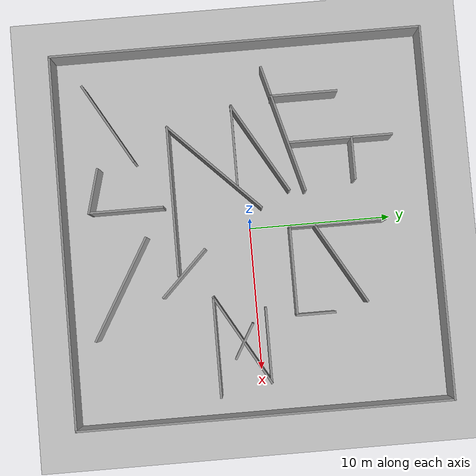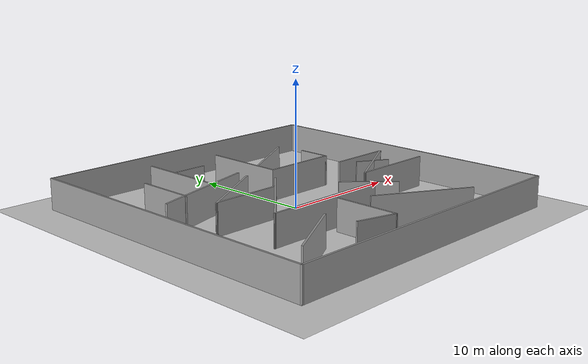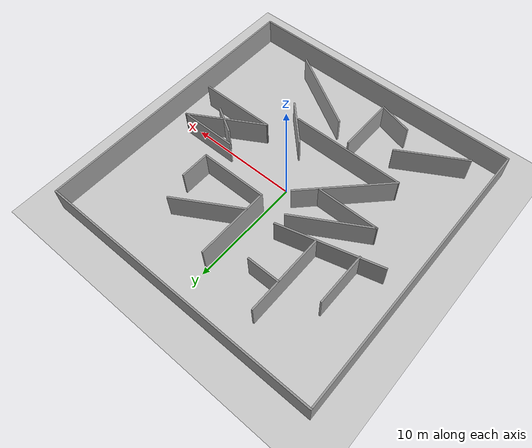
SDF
<sdf version="1.6">
 <world name="default">
  <light name="sun" type="directional">
   <pose>0 0 10 0 -0 0</pose>
   <diffuse>0.8 0.8 0.8 1</diffuse>
   <specular>0.1 0.1 0.1 1</specular>
   <attenuation>
    <range>1000</range>
    <constant>0.9</constant>
    <linear>0.01</linear>
    <quadratic>0.001</quadratic>
   </attenuation>
   <direction>-0.5 0.5 -1</direction>
  </light>
  <model name="ground_plane">
   <static>1</static>
   <link name="link">
    <collision name="collision">
     <geometry><plane><normal>0 0 1</normal><size>100 100</size></plane></geometry>
     <surface><friction><ode><mu>100</mu><mu2>50</mu2></ode></friction></surface>
    </collision>
    <visual name="visual">
     <cast_shadows>0</cast_shadows>
     <geometry><plane><normal>0 0 1</normal><size>100 100</size></plane></geometry>
     <material>
      <script><uri>file://media/materials/scripts/gazebo.material</uri><name>Gazebo/Grey</name></script>
     </material>
    </visual>
   </link>
  </model>
  <gravity>0 0 -9.8</gravity>
  <magnetic_field>6e-06 2.3e-05 -4.2e-05</magnetic_field>
  <atmosphere type="adiabatic"/>
  <physics name="default_physics" default="0" type="ode">
   <max_step_size>0.001</max_step_size>
   <real_time_factor>1</real_time_factor>
   <real_time_update_rate>1000</real_time_update_rate>
  </physics>
  <scene><ambient>0.4 0.4 0.4 1</ambient><background>0.7 0.7 0.7 1</background><shadows>1</shadows></scene>
  <spherical_coordinates>
   <surface_model>EARTH_WGS84</surface_model>
   <latitude_deg>0</latitude_deg>
   <longitude_deg>0</longitude_deg>
   <elevation>0</elevation>
   <heading_deg>0</heading_deg>
  </spherical_coordinates>
  <model name="pp_test_zi">
   <link name="Wall_0">
    <collision name="Wall_0_Collision">
     <geometry><box><size>26.15 0.15 2.5</size></box></geometry>
     <pose>0 0 1.25 0 -0 0</pose>
    </collision>
    <visual name="Wall_0_Visual">
     <pose>0 0 1.25 0 -0 0</pose>
     <geometry><box><size>26.15 0.15 2.5</size></box></geometry>
     <material>
      <script><uri>file://media/materials/scripts/gazebo.material</uri><name>Gazebo/Grey</name></script>
      <ambient>1 1 1 1</ambient>
     </material>
    </visual>
    <pose>0 13 0 0 -0 0</pose>
   </link>
   <link name="Wall_15">
    <collision name="Wall_15_Collision">
     <geometry><box><size>9.25 0.15 2.5</size></box></geometry>
     <pose>0 0 1.25 0 -0 0</pose>
    </collision>
    <visual name="Wall_15_Visual">
     <pose>0 0 1.25 0 -0 0</pose>
     <geometry><box><size>9.25 0.15 2.5</size></box></geometry>
     <material>
      <script><uri>file://media/materials/scripts/gazebo.material</uri><name>Gazebo/Grey</name></script>
      <ambient>1 1 1 1</ambient>
     </material>
    </visual>
    <pose>-6.62975 2.86954 0 0 -0 0.261799</pose>
   </link>
   <link name="Wall_17">
    <collision name="Wall_17_Collision">
     <geometry><box><size>7.25 0.15 2.5</size></box></geometry>
     <pose>0 0 1.25 0 -0 0</pose>
    </collision>
    <visual name="Wall_17_Visual">
     <pose>0 0 1.25 0 -0 0</pose>
     <geometry><box><size>7.25 0.15 2.5</size></box></geometry>
     <material>
      <script><uri>file://media/materials/scripts/gazebo.material</uri><name>Gazebo/Grey</name></script>
      <ambient>1 1 1 1</ambient>
     </material>
    </visual>
    <pose>-5.61026 6.81734 0 0 0 -1.5708</pose>
   </link>
   <link name="Wall_19">
    <collision name="Wall_19_Collision">
     <geometry><box><size>3 0.15 2.5</size></box></geometry>
     <pose>0 0 1.25 0 -0 0</pose>
    </collision>
    <visual name="Wall_19_Visual">
     <pose>0 0 1.25 0 -0 0</pose>
     <geometry><box><size>3 0.15 2.5</size></box></geometry>
     <material>
      <script><uri>file://media/materials/scripts/gazebo.material</uri><name>Gazebo/Grey</name></script>
      <ambient>1 1 1 1</ambient>
     </material>
    </visual>
    <pose>-4.15449 7.56782 0 0 -0 0</pose>
   </link>
   <link name="Wall_2">
    <collision name="Wall_2_Collision">
     <geometry><box><size>26.15 0.15 2.5</size></box></geometry>
     <pose>0 0 1.25 0 -0 0</pose>
    </collision>
    <visual name="Wall_2_Visual">
     <pose>0 0 1.25 0 -0 0</pose>
     <geometry><box><size>26.15 0.15 2.5</size></box></geometry>
     <material>
      <script><uri>file://media/materials/scripts/gazebo.material</uri><name>Gazebo/Grey</name></script>
      <ambient>1 1 1 1</ambient>
     </material>
    </visual>
    <pose>13 0 0 0 0 -1.5708</pose>
   </link>
   <link name="Wall_21">
    <collision name="Wall_21_Collision">
     <geometry><box><size>4.75 0.15 2.5</size></box></geometry>
     <pose>0 0 1.25 0 -0 0</pose>
    </collision>
    <visual name="Wall_21_Visual">
     <pose>0 0 1.25 0 -0 0</pose>
     <geometry><box><size>4.75 0.15 2.5</size></box></geometry>
     <material>
      <script><uri>file://media/materials/scripts/gazebo.material</uri><name>Gazebo/Grey</name></script>
      <ambient>1 1 1 1</ambient>
     </material>
    </visual>
    <pose>-8.96353 4.48414 0 0 -0 1.5708</pose>
   </link>
   <link name="Wall_23">
    <collision name="Wall_23_Collision">
     <geometry><box><size>6.75 0.15 2.5</size></box></geometry>
     <pose>0 0 1.25 0 -0 0</pose>
    </collision>
    <visual name="Wall_23_Visual">
     <pose>0 0 1.25 0 -0 0</pose>
     <geometry><box><size>6.75 0.15 2.5</size></box></geometry>
     <material>
      <script><uri>file://media/materials/scripts/gazebo.material</uri><name>Gazebo/Grey</name></script>
      <ambient>1 1 1 1</ambient>
     </material>
    </visual>
    <pose>0.265656 6.05213 0 0 0 -1.5708</pose>
   </link>
   <link name="Wall_24">
    <collision name="Wall_24_Collision">
     <geometry><box><size>6.25 0.15 2.5</size></box></geometry>
     <pose>0 0 1.25 0 -0 0</pose>
    </collision>
    <visual name="Wall_24_Visual">
     <pose>0 0 1.25 0 -0 0</pose>
     <geometry><box><size>6.25 0.15 2.5</size></box></geometry>
     <material>
      <script><uri>file://media/materials/scripts/gazebo.material</uri><name>Gazebo/Grey</name></script>
      <ambient>1 1 1 1</ambient>
     </material>
    </visual>
    <pose>3.31566 2.75213 0 0 -0 0</pose>
   </link>
   <link name="Wall_25">
    <collision name="Wall_25_Collision">
     <geometry><box><size>2.75 0.15 2.5</size></box></geometry>
     <pose>0 0 1.25 0 -0 0</pose>
    </collision>
    <visual name="Wall_25_Visual">
     <pose>0 0 1.25 0 -0 0</pose>
     <geometry><box><size>2.75 0.15 2.5</size></box></geometry>
     <material>
      <script><uri>file://media/materials/scripts/gazebo.material</uri><name>Gazebo/Grey</name></script>
      <ambient>1 1 1 1</ambient>
     </material>
    </visual>
    <pose>6.36566 4.05213 0 0 -0 1.5708</pose>
   </link>
   <link name="Wall_27">
    <collision name="Wall_27_Collision">
     <geometry><box><size>6.5 0.15 2.5</size></box></geometry>
     <pose>0 0 1.25 0 -0 0</pose>
    </collision>
    <visual name="Wall_27_Visual">
     <pose>0 0 1.25 0 -0 0</pose>
     <geometry><box><size>6.5 0.15 2.5</size></box></geometry>
     <material>
      <script><uri>file://media/materials/scripts/gazebo.material</uri><name>Gazebo/Grey</name></script>
      <ambient>1 1 1 1</ambient>
     </material>
    </visual>
    <pose>3.04605 6.07893 0 0 -0 0.523599</pose>
   </link>
   <link name="Wall_29">
    <collision name="Wall_29_Collision">
     <geometry><box><size>7.25 0.15 2.5</size></box></geometry>
     <pose>0 0 1.25 0 -0 0</pose>
    </collision>
    <visual name="Wall_29_Visual">
     <pose>0 0 1.25 0 -0 0</pose>
     <geometry><box><size>7.25 0.15 2.5</size></box></geometry>
     <material>
      <script><uri>file://media/materials/scripts/gazebo.material</uri><name>Gazebo/Grey</name></script>
      <ambient>1 1 1 1</ambient>
     </material>
    </visual>
    <pose>-5.42367 1.14747 0 0 0 -2.61799</pose>
   </link>
   <link name="Wall_30">
    <collision name="Wall_30_Collision">
     <geometry><box><size>5.75 0.15 2.5</size></box></geometry>
     <pose>0 0 1.25 0 -0 0</pose>
    </collision>
    <visual name="Wall_30_Visual">
     <pose>0 0 1.25 0 -0 0</pose>
     <geometry><box><size>5.75 0.15 2.5</size></box></geometry>
     <material>
      <script><uri>file://media/materials/scripts/gazebo.material</uri><name>Gazebo/Grey</name></script>
      <ambient>1 1 1 1</ambient>
     </material>
    </visual>
    <pose>-5.69806 -0.627531 0 0 -0 0</pose>
   </link>
   <link name="Wall_32">
    <collision name="Wall_32_Collision">
     <geometry><box><size>8.75 0.15 2.5</size></box></geometry>
     <pose>0 0 1.25 0 -0 0</pose>
    </collision>
    <visual name="Wall_32_Visual">
     <pose>0 0 1.25 0 -0 0</pose>
     <geometry><box><size>8.75 0.15 2.5</size></box></geometry>
     <material>
      <script><uri>file://media/materials/scripts/gazebo.material</uri><name>Gazebo/Grey</name></script>
      <ambient>1 1 1 1</ambient>
     </material>
    </visual>
    <pose>-4.34386 -2.14851 0 0 0 -2.35619</pose>
   </link>
   <link name="Wall_33">
    <collision name="Wall_33_Collision">
     <geometry><box><size>10.5 0.15 2.5</size></box></geometry>
     <pose>0 0 1.25 0 -0 0</pose>
    </collision>
    <visual name="Wall_33_Visual">
     <pose>0 0 1.25 0 -0 0</pose>
     <geometry><box><size>10.5 0.15 2.5</size></box></geometry>
     <material>
      <script><uri>file://media/materials/scripts/gazebo.material</uri><name>Gazebo/Grey</name></script>
      <ambient>1 1 1 1</ambient>
     </material>
    </visual>
    <pose>-2.20942 -5.18907 0 0 -0 0</pose>
   </link>
   <link name="Wall_36">
    <collision name="Wall_36_Collision">
     <geometry><box><size>4.5 0.15 2.5</size></box></geometry>
     <pose>0 0 1.25 0 -0 0</pose>
    </collision>
    <visual name="Wall_36_Visual">
     <pose>0 0 1.25 0 -0 0</pose>
     <geometry><box><size>4.5 0.15 2.5</size></box></geometry>
     <material>
      <script><uri>file://media/materials/scripts/gazebo.material</uri><name>Gazebo/Grey</name></script>
      <ambient>1 1 1 1</ambient>
     </material>
    </visual>
    <pose>2.84959 -4.79904 0 0 0 -0.785398</pose>
   </link>
   <link name="Wall_38">
    <collision name="Wall_38_Collision">
     <geometry><box><size>5.25 0.15 2.5</size></box></geometry>
     <pose>0 0 1.25 0 -0 0</pose>
    </collision>
    <visual name="Wall_38_Visual">
     <pose>0 0 1.25 0 -0 0</pose>
     <geometry><box><size>5.25 0.15 2.5</size></box></geometry>
     <material>
      <script><uri>file://media/materials/scripts/gazebo.material</uri><name>Gazebo/Grey</name></script>
      <ambient>1 1 1 1</ambient>
     </material>
    </visual>
    <pose>-1.85706 -8.48755 0 0 0 -1.5708</pose>
   </link>
   <link name="Wall_39">
    <collision name="Wall_39_Collision">
     <geometry><box><size>3.25 0.15 2.5</size></box></geometry>
     <pose>0 0 1.25 0 -0 0</pose>
    </collision>
    <visual name="Wall_39_Visual">
     <pose>0 0 1.25 0 -0 0</pose>
     <geometry><box><size>3.25 0.15 2.5</size></box></geometry>
     <material>
      <script><uri>file://media/materials/scripts/gazebo.material</uri><name>Gazebo/Grey</name></script>
      <ambient>1 1 1 1</ambient>
     </material>
    </visual>
    <pose>-3.35424 -10.6364 0 0 -0 2.87979</pose>
   </link>
   <link name="Wall_4">
    <collision name="Wall_4_Collision">
     <geometry><box><size>26.15 0.15 2.5</size></box></geometry>
     <pose>0 0 1.25 0 -0 0</pose>
    </collision>
    <visual name="Wall_4_Visual">
     <pose>0 0 1.25 0 -0 0</pose>
     <geometry><box><size>26.15 0.15 2.5</size></box></geometry>
     <material>
      <script><uri>file://media/materials/scripts/gazebo.material</uri><name>Gazebo/Grey</name></script>
      <ambient>1 1 1 1</ambient>
     </material>
    </visual>
    <pose>0 -13 0 0 -0 3.14159</pose>
   </link>
   <link name="Wall_41">
    <collision name="Wall_41_Collision">
     <geometry><box><size>6.5 0.15 2.5</size></box></geometry>
     <pose>0 0 1.25 0 -0 0</pose>
    </collision>
    <visual name="Wall_41_Visual">
     <pose>0 0 1.25 0 -0 0</pose>
     <geometry><box><size>6.5 0.15 2.5</size></box></geometry>
     <material>
      <script><uri>file://media/materials/scripts/gazebo.material</uri><name>Gazebo/Grey</name></script>
      <ambient>1 1 1 1</ambient>
     </material>
    </visual>
    <pose>-7.95996 -9.27859 0 0 0 -2.61799</pose>
   </link>
   <link name="Wall_43">
    <collision name="Wall_43_Collision">
     <geometry><box><size>8 0.15 2.5</size></box></geometry>
     <pose>0 0 1.25 0 -0 0</pose>
    </collision>
    <visual name="Wall_43_Visual">
     <pose>0 0 1.25 0 -0 0</pose>
     <geometry><box><size>8 0.15 2.5</size></box></geometry>
     <material>
      <script><uri>file://media/materials/scripts/gazebo.material</uri><name>Gazebo/Grey</name></script>
      <ambient>1 1 1 1</ambient>
     </material>
    </visual>
    <pose>3.57251 -9.22289 0 0 0 -0.523599</pose>
   </link>
   <link name="Wall_45">
    <collision name="Wall_45_Collision">
     <geometry><box><size>5.25 0.15 2.5</size></box></geometry>
     <pose>0 0 1.25 0 -0 0</pose>
    </collision>
    <visual name="Wall_45_Visual">
     <pose>0 0 1.25 0 -0 0</pose>
     <geometry><box><size>5.25 0.15 2.5</size></box></geometry>
     <material>
      <script><uri>file://media/materials/scripts/gazebo.material</uri><name>Gazebo/Grey</name></script>
      <ambient>1 1 1 1</ambient>
     </material>
    </visual>
    <pose>8.26087 0.615174 0 0 -0 0</pose>
   </link>
   <link name="Wall_46">
    <collision name="Wall_46_Collision">
     <geometry><box><size>7.25 0.15 2.5</size></box></geometry>
     <pose>0 0 1.25 0 -0 0</pose>
    </collision>
    <visual name="Wall_46_Visual">
     <pose>0 0 1.25 0 -0 0</pose>
     <geometry><box><size>7.25 0.15 2.5</size></box></geometry>
     <material>
      <script><uri>file://media/materials/scripts/gazebo.material</uri><name>Gazebo/Grey</name></script>
      <ambient>1 1 1 1</ambient>
     </material>
    </visual>
    <pose>7.73648 -1.15983 0 0 0 -2.61799</pose>
   </link>
   <link name="Wall_47">
    <collision name="Wall_47_Collision">
     <geometry><box><size>7 0.15 2.5</size></box></geometry>
     <pose>0 0 1.25 0 -0 0</pose>
    </collision>
    <visual name="Wall_47_Visual">
     <pose>0 0 1.25 0 -0 0</pose>
     <geometry><box><size>7 0.15 2.5</size></box></geometry>
     <material>
      <script><uri>file://media/materials/scripts/gazebo.material</uri><name>Gazebo/Grey</name></script>
      <ambient>1 1 1 1</ambient>
     </material>
    </visual>
    <pose>8.08709 -2.93483 0 0 -0 0</pose>
   </link>
   <link name="Wall_49">
    <collision name="Wall_49_Collision">
     <geometry><box><size>2.75 0.15 2.5</size></box></geometry>
     <pose>0 0 1.25 0 -0 0</pose>
    </collision>
    <visual name="Wall_49_Visual">
     <pose>0 0 1.25 0 -0 0</pose>
     <geometry><box><size>2.75 0.15 2.5</size></box></geometry>
     <material>
      <script><uri>file://media/materials/scripts/gazebo.material</uri><name>Gazebo/Grey</name></script>
      <ambient>1 1 1 1</ambient>
     </material>
    </visual>
    <pose>7.85192 -1.01927 0 0 0 -0.523599</pose>
   </link>
   <link name="Wall_6">
    <collision name="Wall_6_Collision">
     <geometry><box><size>26.15 0.15 2.5</size></box></geometry>
     <pose>0 0 1.25 0 -0 0</pose>
    </collision>
    <visual name="Wall_6_Visual">
     <pose>0 0 1.25 0 -0 0</pose>
     <geometry><box><size>26.15 0.15 2.5</size></box></geometry>
     <material>
      <script><uri>file://media/materials/scripts/gazebo.material</uri><name>Gazebo/Grey</name></script>
      <ambient>1 1 1 1</ambient>
     </material>
    </visual>
    <pose>-13 0 0 0 -0 1.5708</pose>
   </link>
   <static>1</static>
  </model>
 </world>
</sdf>
